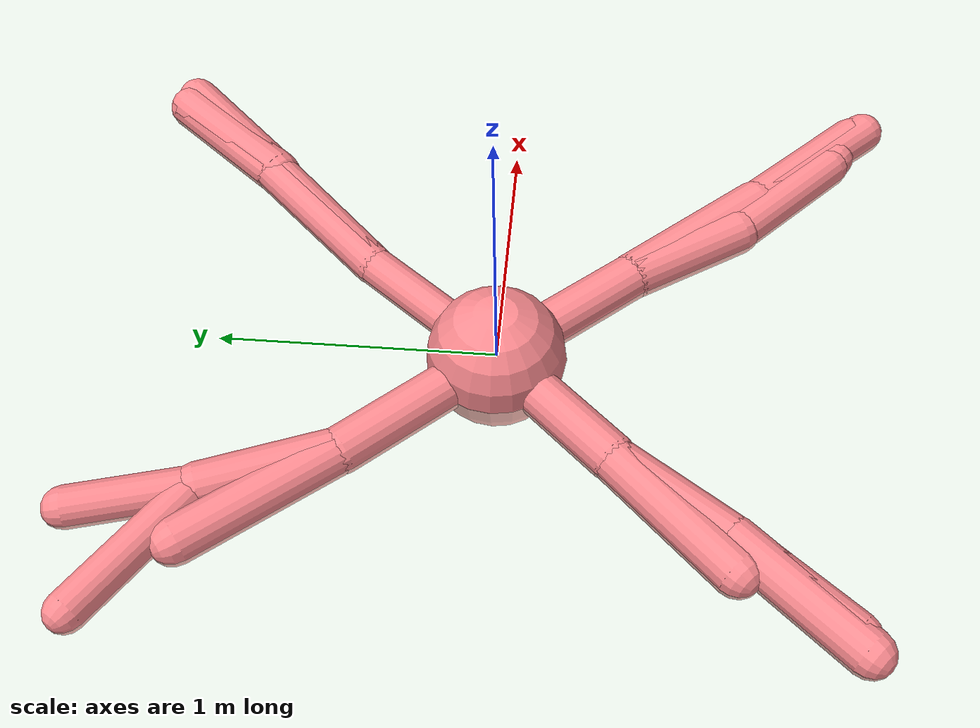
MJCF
<mujoco model="ant">
  <compiler angle="degree" coordinate="global" inertiafromgeom="true"/>
  <option integrator="RK4" timestep="0.01"/>
  <default>
    <joint armature="1" damping="1" limited="true"/>
    <geom conaffinity="0" condim="3" density="5.0" friction="1 0.5 0.5" margin="0.01" rgba=".98 .54 .56 1."/>
  </default>
  <visual>
    <headlight ambient=".1 .1 .1" diffuse=".6 .6 .6" specular="0.3 0.3 0.3"/>
    <map znear=".01"/>
    <quality shadowsize="16384"/>
  </visual>
  <worldbody>
    <light cutoff="100" diffuse="1 1 1" dir="-0 0 -1.3" directional="true" exponent="1" pos="0 0 1.3" specular=".1 .1 .1"/>
    <geom conaffinity="1" condim="3" name="floor" pos="0 0 0" rgba="0.8 0.9 0.8 1" size="200 200 .125" type="plane" material="grid_new"/>
    <body name="0" pos="0 0 0">
      <camera name="track" mode="trackcom" pos="0 -3 0.3" xyaxes="1 0 0 0 0 1"/>
      <geom pos="0 0 0" size="0.25" type="sphere"/>
      <joint armature="0" damping="0" limited="false" margin="0.01" name="0_joint" pos="0 0 0" type="free"/>
      <body name="1" pos="0 0 0">
        <joint axis="-0.707107 0.707107 0" name="1_joint" pos="0 0 0" range="-30 30" type="hinge"/>
        <geom fromto="-0.001283 -0.001622 0 0.392174 0.495992 0" size="0.073039" type="capsule"/>
        <body name="11" pos="0.392174 0.495992 0">
          <joint axis="-0.707107 0.707107 0" name="11_joint" pos="0.392174 0.495992 0" range="-30 30" type="hinge"/>
          <geom fromto="0.39169 0.495521 0 0.861245 0.952738 0" size="0.075187" type="capsule"/>
          <body name="111" pos="0.861245 0.952738 0">
            <joint axis="-0.707107 0.707107 0" name="111_joint" pos="0.861245 0.952738 0" range="-30 30" type="hinge"/>
            <geom fromto="0.860799 0.952288 0 1.284895 1.37978 0" size="0.081288" type="capsule"/>
          </body>
          <body name="211" pos="0.861245 0.952738 0">
            <joint axis="-0.707107 0.707107 0" name="211_joint" pos="0.861245 0.952738 0" range="-30 30" type="hinge"/>
            <geom fromto="0.861228 0.952718 0 1.218547 1.391548 0" size="0.086181" type="capsule"/>
          </body>
        </body>
        <body name="21" pos="0.392174 0.495992 0">
          <joint axis="-0.707107 0.707107 0" name="21_joint" pos="0.392174 0.495992 0" range="-30 30" type="hinge"/>
          <geom fromto="0.391054 0.494848 0 0.861386 0.975116 0" size="0.075625" type="capsule"/>
          <body name="121" pos="0.861386 0.975116 0">
            <joint axis="-0.707107 0.707107 0" name="121_joint" pos="0.861386 0.975116 0" range="-30 30" type="hinge"/>
            <geom fromto="0.861383 0.975113 0 1.21453 1.399957 0" size="0.07818" type="capsule"/>
          </body>
        </body>
      </body>
      <body name="2" pos="0 0 0">
        <joint axis="-0.707107 -0.707107 0" name="2_joint" pos="0 0 0" range="-30 30" type="hinge"/>
        <geom fromto="0.000137 -0.000152 0 -0.442313 0.491064 0" size="0.085427" type="capsule"/>
        <body name="12" pos="-0.442313 0.491064 0">
          <joint axis="-0.707107 -0.707107 0" name="12_joint" pos="-0.442313 0.491064 0" range="-30 30" type="hinge"/>
          <geom fromto="-0.441766 0.489669 0 -0.615785 0.933819 0" size="0.082701" type="capsule"/>
          <body name="112" pos="-0.615785 0.933819 0">
            <joint axis="-0.707107 -0.707107 0" name="112_joint" pos="-0.615785 0.933819 0" range="-30 30" type="hinge"/>
            <geom fromto="-0.61371 0.932521 0 -1.085951 1.228083 0" size="0.070971" type="capsule"/>
          </body>
          <body name="212" pos="-0.615785 0.933819 0">
            <joint axis="-0.707107 -0.707107 0" name="212_joint" pos="-0.615785 0.933819 0" range="-30 30" type="hinge"/>
            <geom fromto="-0.615744 0.933671 0 -0.72687 1.343858 0" size="0.072893" type="capsule"/>
          </body>
        </body>
        <body name="22" pos="-0.442313 0.491064 0">
          <joint axis="-0.707107 -0.707107 0" name="22_joint" pos="-0.442313 0.491064 0" range="-30 30" type="hinge"/>
          <geom fromto="-0.442309 0.491059 0 -0.821779 0.957321 0" size="0.08218" type="capsule"/>
        </body>
      </body>
      <body name="3" pos="0 0 0">
        <joint axis="0.707107 -0.707107 0" name="3_joint" pos="0 0 0" range="-30 30" type="hinge"/>
        <geom fromto="0.000703 0.000743 0 -0.399903 -0.422591 0" size="0.084794" type="capsule"/>
        <body name="13" pos="-0.399903 -0.422591 0">
          <joint axis="0.707107 -0.707107 0" name="13_joint" pos="-0.399903 -0.422591 0" range="-30 30" type="hinge"/>
          <geom fromto="-0.399899 -0.422585 0 -0.675595 -0.811699 0" size="0.079313" type="capsule"/>
          <body name="113" pos="-0.675595 -0.811699 0">
            <joint axis="0.707107 -0.707107 0" name="113_joint" pos="-0.675595 -0.811699 0" range="-30 30" type="hinge"/>
            <geom fromto="-0.674728 -0.810653 0 -0.979183 -1.17797 0" size="0.076516" type="capsule"/>
          </body>
          <body name="213" pos="-0.675595 -0.811699 0">
            <joint axis="0.707107 -0.707107 0" name="213_joint" pos="-0.675595 -0.811699 0" range="-30 30" type="hinge"/>
            <geom fromto="-0.675256 -0.811324 0 -1.033804 -1.208649 0" size="0.080978" type="capsule"/>
          </body>
        </body>
        <body name="23" pos="-0.399903 -0.422591 0">
          <joint axis="0.707107 -0.707107 0" name="23_joint" pos="-0.399903 -0.422591 0" range="-30 30" type="hinge"/>
          <geom fromto="-0.399902 -0.42259 0 -0.797904 -0.822022 0" size="0.08198" type="capsule"/>
        </body>
      </body>
      <body name="4" pos="0 0 0">
        <joint axis="0.707107 0.707107 0" name="4_joint" pos="0 0 0" range="-30 30" type="hinge"/>
        <geom fromto="-0.000024 0.000028 0 0.413307 -0.473595 0" size="0.086065" type="capsule"/>
        <body name="14" pos="0.413307 -0.473595 0">
          <joint axis="0.707107 0.707107 0" name="14_joint" pos="0.413307 -0.473595 0" range="-30 30" type="hinge"/>
          <geom fromto="0.41249 -0.47268 0 0.837534 -0.948626 0" size="0.087755" type="capsule"/>
          <body name="114" pos="0.837534 -0.948626 0">
            <joint axis="0.707107 0.707107 0" name="114_joint" pos="0.837534 -0.948626 0" range="-30 30" type="hinge"/>
            <geom fromto="0.837168 -0.948244 0 1.275702 -1.405804 0" size="0.081356" type="capsule"/>
          </body>
          <body name="214" pos="0.837534 -0.948626 0">
            <joint axis="0.707107 0.707107 0" name="214_joint" pos="0.837534 -0.948626 0" range="-30 30" type="hinge"/>
            <geom fromto="0.837435 -0.948527 0 1.242085 -1.353562 0" size="0.082024" type="capsule"/>
          </body>
        </body>
        <body name="24" pos="0.413307 -0.473595 0">
          <joint axis="0.707107 0.707107 0" name="24_joint" pos="0.413307 -0.473595 0" range="-30 30" type="hinge"/>
          <geom fromto="0.413138 -0.473335 0 0.672212 -0.871782 0" size="0.08723" type="capsule"/>
          <body name="124" pos="0.672212 -0.871782 0">
            <joint axis="0.707107 0.707107 0" name="124_joint" pos="0.672212 -0.871782 0" range="-30 30" type="hinge"/>
            <geom fromto="0.672193 -0.871765 0 1.108189 -1.276858 0" size="0.077359" type="capsule"/>
          </body>
          <body name="224" pos="0.672212 -0.871782 0">
            <joint axis="0.707107 0.707107 0" name="224_joint" pos="0.672212 -0.871782 0" range="-30 30" type="hinge"/>
            <geom fromto="0.67197 -0.871548 0 1.062659 -1.248226 0" size="0.080632" type="capsule"/>
          </body>
        </body>
      </body>
    </body>
  </worldbody>
  <actuator>
    <motor ctrllimited="true" ctrlrange="-1.0 1.0" joint="1_joint" gear="147.933874" name="1_joint"/>
    <motor ctrllimited="true" ctrlrange="-1.0 1.0" joint="2_joint" gear="49.471469" name="2_joint"/>
    <motor ctrllimited="true" ctrlrange="-1.0 1.0" joint="3_joint" gear="52.251917" name="3_joint"/>
    <motor ctrllimited="true" ctrlrange="-1.0 1.0" joint="4_joint" gear="162.879876" name="4_joint"/>
    <motor ctrllimited="true" ctrlrange="-1.0 1.0" joint="11_joint" gear="93.949771" name="11_joint"/>
    <motor ctrllimited="true" ctrlrange="-1.0 1.0" joint="12_joint" gear="66.853464" name="12_joint"/>
    <motor ctrllimited="true" ctrlrange="-1.0 1.0" joint="13_joint" gear="86.952467" name="13_joint"/>
    <motor ctrllimited="true" ctrlrange="-1.0 1.0" joint="14_joint" gear="106.873037" name="14_joint"/>
    <motor ctrllimited="true" ctrlrange="-1.0 1.0" joint="21_joint" gear="51.081923" name="21_joint"/>
    <motor ctrllimited="true" ctrlrange="-1.0 1.0" joint="22_joint" gear="183.633248" name="22_joint"/>
    <motor ctrllimited="true" ctrlrange="-1.0 1.0" joint="23_joint" gear="151.429036" name="23_joint"/>
    <motor ctrllimited="true" ctrlrange="-1.0 1.0" joint="24_joint" gear="78.664406" name="24_joint"/>
    <motor ctrllimited="true" ctrlrange="-1.0 1.0" joint="111_joint" gear="128.298213" name="111_joint"/>
    <motor ctrllimited="true" ctrlrange="-1.0 1.0" joint="112_joint" gear="96.704347" name="112_joint"/>
    <motor ctrllimited="true" ctrlrange="-1.0 1.0" joint="113_joint" gear="127.172911" name="113_joint"/>
    <motor ctrllimited="true" ctrlrange="-1.0 1.0" joint="114_joint" gear="122.463605" name="114_joint"/>
    <motor ctrllimited="true" ctrlrange="-1.0 1.0" joint="211_joint" gear="62.767199" name="211_joint"/>
    <motor ctrllimited="true" ctrlrange="-1.0 1.0" joint="213_joint" gear="128.277525" name="213_joint"/>
    <motor ctrllimited="true" ctrlrange="-1.0 1.0" joint="214_joint" gear="102.769106" name="214_joint"/>
    <motor ctrllimited="true" ctrlrange="-1.0 1.0" joint="121_joint" gear="78.847009" name="121_joint"/>
    <motor ctrllimited="true" ctrlrange="-1.0 1.0" joint="124_joint" gear="84.6405" name="124_joint"/>
    <motor ctrllimited="true" ctrlrange="-1.0 1.0" joint="224_joint" gear="110.544464" name="224_joint"/>
    <motor ctrllimited="true" ctrlrange="-1.0 1.0" joint="212_joint" gear="126.892408" name="212_joint"/>
  </actuator>
  <asset>
    <texture type="skybox" builtin="gradient" rgb1=".4 .5 .6" rgb2="0 0 0" width="100" height="100"/>
    <texture builtin="flat" height="1278" mark="cross" markrgb="1 1 1" name="texgeom" random="0.01" rgb1="0.8 0.6 0.4" rgb2="0.8 0.6 0.4" type="cube" width="127"/>
    <texture builtin="checker" height="100" name="texplane" rgb1="0 0 0" rgb2="0.8 0.8 0.8" type="2d" width="100"/>
    <material name="MatPlane" reflectance="0.5" shininess="1" specular="1" texrepeat="60 60" texture="texplane"/>
    <material name="geom" texture="texgeom" texuniform="true"/>
    <texture name="grid_new" type="2d" builtin="checker" rgb1=".1 .3 .2" rgb2=".2 .4 .3" width="1000" height="1000" mark="none" markrgb=".8 .6 .4"/>
    <material name="grid_new" texture="grid_new" texrepeat="0.2 0.2" texuniform="true" reflectance=".2"/>
  </asset>
</mujoco>
